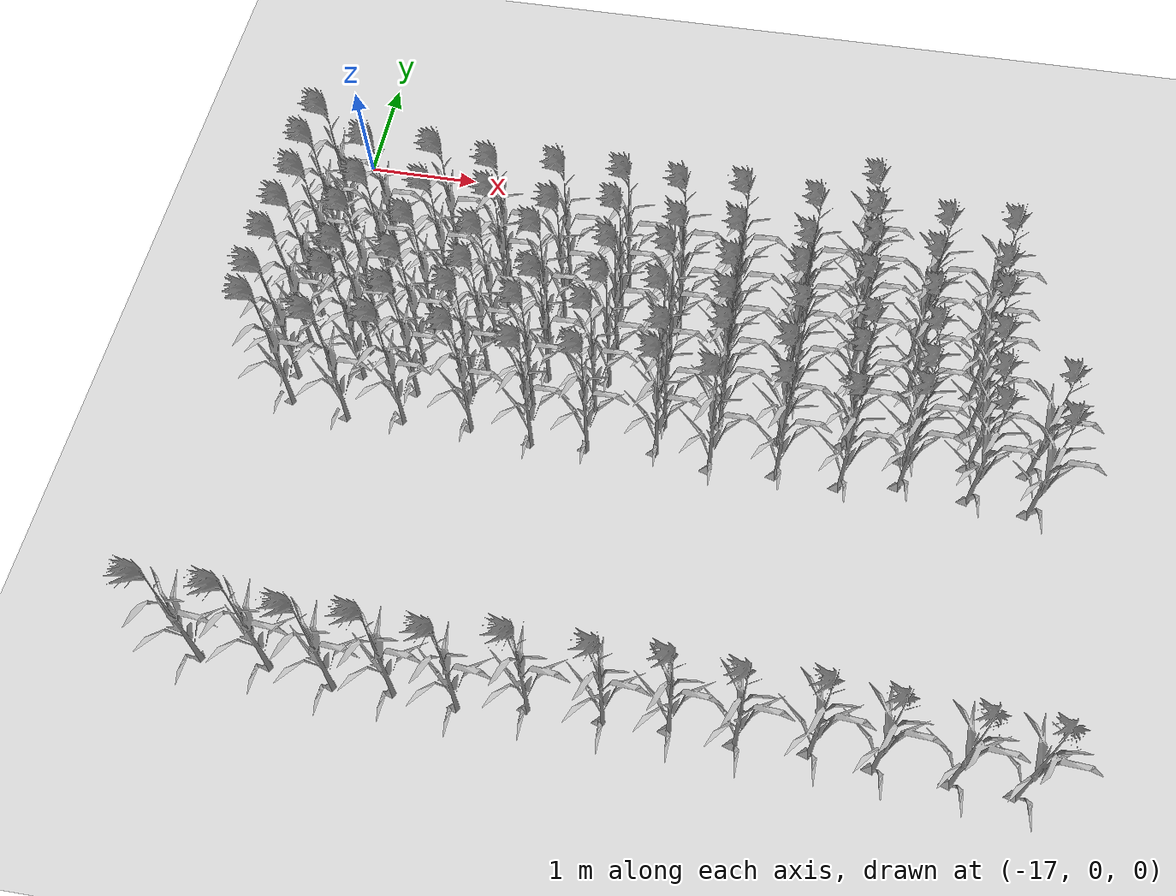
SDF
<sdf version="1.7">
 <world name="farmland_world">
  <model name="ground_plane">
   <static>1</static>
   <link name="link">
    <collision name="collision">
     <geometry><plane><normal>0 0 1</normal><size>40.0 40.0</size></plane></geometry>
     <surface><friction><ode><mu>100</mu><mu2>50</mu2></ode></friction></surface>
    </collision>
    <visual name="visual">
     <cast_shadows>0</cast_shadows>
     <geometry><plane><normal>0 0 1</normal><size>40.0 40.0</size></plane></geometry>
     <material>
      <script><uri>file://media/materials/scripts/gazebo.material</uri><name>Gazebo/Grey</name></script>
     </material>
    </visual>
   </link>
  </model>
  <model name="tree_3_2442">
   <static>1</static>
   <link name="link">
    <collision name="collision">
     <geometry><mesh><uri>model://Corn_low_poly/corn.obj</uri><scale>1 1 1</scale></mesh></geometry>
     <surface><friction><ode><mu>100</mu><mu2>50</mu2></ode></friction></surface>
    </collision>
    <visual name="visual">
     <geometry><mesh><uri>model://Corn_low_poly/corn.obj</uri><scale>1 1 1</scale></mesh></geometry>
    </visual>
   </link>
   <pose>-10.813982819709805 -5.044033839136802 0 0 0 0</pose>
  </model>
  <model name="tree_3_2443">
   <static>1</static>
   <link name="link">
    <collision name="collision">
     <geometry><mesh><uri>model://Corn_low_poly/corn.obj</uri><scale>1 1 1</scale></mesh></geometry>
     <surface><friction><ode><mu>100</mu><mu2>50</mu2></ode></friction></surface>
    </collision>
    <visual name="visual">
     <geometry><mesh><uri>model://Corn_low_poly/corn.obj</uri><scale>1 1 1</scale></mesh></geometry>
    </visual>
   </link>
   <pose>-11.293837085174149 -5.0311727630753875 0 0 0 0</pose>
  </model>
  <model name="tree_3_2444">
   <static>1</static>
   <link name="link">
    <collision name="collision">
     <geometry><mesh><uri>model://Corn_low_poly/corn.obj</uri><scale>1 1 1</scale></mesh></geometry>
     <surface><friction><ode><mu>100</mu><mu2>50</mu2></ode></friction></surface>
    </collision>
    <visual name="visual">
     <geometry><mesh><uri>model://Corn_low_poly/corn.obj</uri><scale>1 1 1</scale></mesh></geometry>
    </visual>
   </link>
   <pose>-11.859439102668842 -5.011030913694257 0 0 0 0</pose>
  </model>
  <model name="tree_3_2445">
   <static>1</static>
   <link name="link">
    <collision name="collision">
     <geometry><mesh><uri>model://Corn_low_poly/corn.obj</uri><scale>1 1 1</scale></mesh></geometry>
     <surface><friction><ode><mu>100</mu><mu2>50</mu2></ode></friction></surface>
    </collision>
    <visual name="visual">
     <geometry><mesh><uri>model://Corn_low_poly/corn.obj</uri><scale>1 1 1</scale></mesh></geometry>
    </visual>
   </link>
   <pose>-12.335916438047455 -4.973076390374428 0 0 0 0</pose>
  </model>
  <model name="tree_3_2446">
   <static>1</static>
   <link name="link">
    <collision name="collision">
     <geometry><mesh><uri>model://Corn_low_poly/corn.obj</uri><scale>1 1 1</scale></mesh></geometry>
     <surface><friction><ode><mu>100</mu><mu2>50</mu2></ode></friction></surface>
    </collision>
    <visual name="visual">
     <geometry><mesh><uri>model://Corn_low_poly/corn.obj</uri><scale>1 1 1</scale></mesh></geometry>
    </visual>
   </link>
   <pose>-12.890268447050023 -4.999595074379133 0 0 0 0</pose>
  </model>
  <model name="tree_3_2447">
   <static>1</static>
   <link name="link">
    <collision name="collision">
     <geometry><mesh><uri>model://Corn_low_poly/corn.obj</uri><scale>1 1 1</scale></mesh></geometry>
     <surface><friction><ode><mu>100</mu><mu2>50</mu2></ode></friction></surface>
    </collision>
    <visual name="visual">
     <geometry><mesh><uri>model://Corn_low_poly/corn.obj</uri><scale>1 1 1</scale></mesh></geometry>
    </visual>
   </link>
   <pose>-13.389869517921136 -4.971297975610936 0 0 0 0</pose>
  </model>
  <model name="tree_3_2448">
   <static>1</static>
   <link name="link">
    <collision name="collision">
     <geometry><mesh><uri>model://Corn_low_poly/corn.obj</uri><scale>1 1 1</scale></mesh></geometry>
     <surface><friction><ode><mu>100</mu><mu2>50</mu2></ode></friction></surface>
    </collision>
    <visual name="visual">
     <geometry><mesh><uri>model://Corn_low_poly/corn.obj</uri><scale>1 1 1</scale></mesh></geometry>
    </visual>
   </link>
   <pose>-13.887070113515204 -4.985414589038329 0 0 0 0</pose>
  </model>
  <model name="tree_3_2449">
   <static>1</static>
   <link name="link">
    <collision name="collision">
     <geometry><mesh><uri>model://Corn_low_poly/corn.obj</uri><scale>1 1 1</scale></mesh></geometry>
     <surface><friction><ode><mu>100</mu><mu2>50</mu2></ode></friction></surface>
    </collision>
    <visual name="visual">
     <geometry><mesh><uri>model://Corn_low_poly/corn.obj</uri><scale>1 1 1</scale></mesh></geometry>
    </visual>
   </link>
   <pose>-14.461688075386332 -4.978131353409035 0 0 0 0</pose>
  </model>
  <model name="tree_3_2450">
   <static>1</static>
   <link name="link">
    <collision name="collision">
     <geometry><mesh><uri>model://Corn_low_poly/corn.obj</uri><scale>1 1 1</scale></mesh></geometry>
     <surface><friction><ode><mu>100</mu><mu2>50</mu2></ode></friction></surface>
    </collision>
    <visual name="visual">
     <geometry><mesh><uri>model://Corn_low_poly/corn.obj</uri><scale>1 1 1</scale></mesh></geometry>
    </visual>
   </link>
   <pose>-14.987341040093252 -5.049699377374454 0 0 0 0</pose>
  </model>
  <model name="tree_3_2451">
   <static>1</static>
   <link name="link">
    <collision name="collision">
     <geometry><mesh><uri>model://Corn_low_poly/corn.obj</uri><scale>1 1 1</scale></mesh></geometry>
     <surface><friction><ode><mu>100</mu><mu2>50</mu2></ode></friction></surface>
    </collision>
    <visual name="visual">
     <geometry><mesh><uri>model://Corn_low_poly/corn.obj</uri><scale>1 1 1</scale></mesh></geometry>
    </visual>
   </link>
   <pose>-15.489242002387796 -5.016638479376735 0 0 0 0</pose>
  </model>
  <model name="tree_3_2452">
   <static>1</static>
   <link name="link">
    <collision name="collision">
     <geometry><mesh><uri>model://Corn_low_poly/corn.obj</uri><scale>1 1 1</scale></mesh></geometry>
     <surface><friction><ode><mu>100</mu><mu2>50</mu2></ode></friction></surface>
    </collision>
    <visual name="visual">
     <geometry><mesh><uri>model://Corn_low_poly/corn.obj</uri><scale>1 1 1</scale></mesh></geometry>
    </visual>
   </link>
   <pose>-15.951922841426425 -5.041342054554254 0 0 0 0</pose>
  </model>
  <model name="tree_3_2453">
   <static>1</static>
   <link name="link">
    <collision name="collision">
     <geometry><mesh><uri>model://Corn_low_poly/corn.obj</uri><scale>1 1 1</scale></mesh></geometry>
     <surface><friction><ode><mu>100</mu><mu2>50</mu2></ode></friction></surface>
    </collision>
    <visual name="visual">
     <geometry><mesh><uri>model://Corn_low_poly/corn.obj</uri><scale>1 1 1</scale></mesh></geometry>
    </visual>
   </link>
   <pose>-16.471373875009284 -4.9674645211224515 0 0 0 0</pose>
  </model>
  <model name="tree_3_2454">
   <static>1</static>
   <link name="link">
    <collision name="collision">
     <geometry><mesh><uri>model://Corn_low_poly/corn.obj</uri><scale>1 1 1</scale></mesh></geometry>
     <surface><friction><ode><mu>100</mu><mu2>50</mu2></ode></friction></surface>
    </collision>
    <visual name="visual">
     <geometry><mesh><uri>model://Corn_low_poly/corn.obj</uri><scale>1 1 1</scale></mesh></geometry>
    </visual>
   </link>
   <pose>-17.01276348608539 -4.979505058281333 0 0 0 0</pose>
  </model>
  <model name="tree_3_2535">
   <static>1</static>
   <link name="link">
    <collision name="collision">
     <geometry><mesh><uri>model://Corn_low_poly/corn.obj</uri><scale>1 1 1</scale></mesh></geometry>
     <surface><friction><ode><mu>100</mu><mu2>50</mu2></ode></friction></surface>
    </collision>
    <visual name="visual">
     <geometry><mesh><uri>model://Corn_low_poly/corn.obj</uri><scale>1 1 1</scale></mesh></geometry>
    </visual>
   </link>
   <pose>-11.292019375755457 -2.030452620999917 0 0 0 0</pose>
  </model>
  <model name="tree_3_2536">
   <static>1</static>
   <link name="link">
    <collision name="collision">
     <geometry><mesh><uri>model://Corn_low_poly/corn.obj</uri><scale>1 1 1</scale></mesh></geometry>
     <surface><friction><ode><mu>100</mu><mu2>50</mu2></ode></friction></surface>
    </collision>
    <visual name="visual">
     <geometry><mesh><uri>model://Corn_low_poly/corn.obj</uri><scale>1 1 1</scale></mesh></geometry>
    </visual>
   </link>
   <pose>-11.784299799415143 -2.0364456040533216 0 0 0 0</pose>
  </model>
  <model name="tree_3_2537">
   <static>1</static>
   <link name="link">
    <collision name="collision">
     <geometry><mesh><uri>model://Corn_low_poly/corn.obj</uri><scale>1 1 1</scale></mesh></geometry>
     <surface><friction><ode><mu>100</mu><mu2>50</mu2></ode></friction></surface>
    </collision>
    <visual name="visual">
     <geometry><mesh><uri>model://Corn_low_poly/corn.obj</uri><scale>1 1 1</scale></mesh></geometry>
    </visual>
   </link>
   <pose>-12.265547425607311 -2.0361134748566694 0 0 0 0</pose>
  </model>
  <model name="tree_3_2538">
   <static>1</static>
   <link name="link">
    <collision name="collision">
     <geometry><mesh><uri>model://Corn_low_poly/corn.obj</uri><scale>1 1 1</scale></mesh></geometry>
     <surface><friction><ode><mu>100</mu><mu2>50</mu2></ode></friction></surface>
    </collision>
    <visual name="visual">
     <geometry><mesh><uri>model://Corn_low_poly/corn.obj</uri><scale>1 1 1</scale></mesh></geometry>
    </visual>
   </link>
   <pose>-12.795250518786201 -1.9899232818067878 0 0 0 0</pose>
  </model>
  <model name="tree_3_2539">
   <static>1</static>
   <link name="link">
    <collision name="collision">
     <geometry><mesh><uri>model://Corn_low_poly/corn.obj</uri><scale>1 1 1</scale></mesh></geometry>
     <surface><friction><ode><mu>100</mu><mu2>50</mu2></ode></friction></surface>
    </collision>
    <visual name="visual">
     <geometry><mesh><uri>model://Corn_low_poly/corn.obj</uri><scale>1 1 1</scale></mesh></geometry>
    </visual>
   </link>
   <pose>-13.371459981876177 -2.003383153055025 0 0 0 0</pose>
  </model>
  <model name="tree_3_2540">
   <static>1</static>
   <link name="link">
    <collision name="collision">
     <geometry><mesh><uri>model://Corn_low_poly/corn.obj</uri><scale>1 1 1</scale></mesh></geometry>
     <surface><friction><ode><mu>100</mu><mu2>50</mu2></ode></friction></surface>
    </collision>
    <visual name="visual">
     <geometry><mesh><uri>model://Corn_low_poly/corn.obj</uri><scale>1 1 1</scale></mesh></geometry>
    </visual>
   </link>
   <pose>-13.900843047974073 -2.003384526437017 0 0 0 0</pose>
  </model>
  <model name="tree_3_2541">
   <static>1</static>
   <link name="link">
    <collision name="collision">
     <geometry><mesh><uri>model://Corn_low_poly/corn.obj</uri><scale>1 1 1</scale></mesh></geometry>
     <surface><friction><ode><mu>100</mu><mu2>50</mu2></ode></friction></surface>
    </collision>
    <visual name="visual">
     <geometry><mesh><uri>model://Corn_low_poly/corn.obj</uri><scale>1 1 1</scale></mesh></geometry>
    </visual>
   </link>
   <pose>-14.355396189523063 -2.012187142470603 0 0 0 0</pose>
  </model>
  <model name="tree_3_2542">
   <static>1</static>
   <link name="link">
    <collision name="collision">
     <geometry><mesh><uri>model://Corn_low_poly/corn.obj</uri><scale>1 1 1</scale></mesh></geometry>
     <surface><friction><ode><mu>100</mu><mu2>50</mu2></ode></friction></surface>
    </collision>
    <visual name="visual">
     <geometry><mesh><uri>model://Corn_low_poly/corn.obj</uri><scale>1 1 1</scale></mesh></geometry>
    </visual>
   </link>
   <pose>-14.875046956748644 -2.0485049222445255 0 0 0 0</pose>
  </model>
  <model name="tree_3_2543">
   <static>1</static>
   <link name="link">
    <collision name="collision">
     <geometry><mesh><uri>model://Corn_low_poly/corn.obj</uri><scale>1 1 1</scale></mesh></geometry>
     <surface><friction><ode><mu>100</mu><mu2>50</mu2></ode></friction></surface>
    </collision>
    <visual name="visual">
     <geometry><mesh><uri>model://Corn_low_poly/corn.obj</uri><scale>1 1 1</scale></mesh></geometry>
    </visual>
   </link>
   <pose>-15.415552251515653 -2.0459977177668907 0 0 0 0</pose>
  </model>
  <model name="tree_3_2544">
   <static>1</static>
   <link name="link">
    <collision name="collision">
     <geometry><mesh><uri>model://Corn_low_poly/corn.obj</uri><scale>1 1 1</scale></mesh></geometry>
     <surface><friction><ode><mu>100</mu><mu2>50</mu2></ode></friction></surface>
    </collision>
    <visual name="visual">
     <geometry><mesh><uri>model://Corn_low_poly/corn.obj</uri><scale>1 1 1</scale></mesh></geometry>
    </visual>
   </link>
   <pose>-15.980851975432646 -2.0420931281696366 0 0 0 0</pose>
  </model>
  <model name="tree_3_2545">
   <static>1</static>
   <link name="link">
    <collision name="collision">
     <geometry><mesh><uri>model://Corn_low_poly/corn.obj</uri><scale>1 1 1</scale></mesh></geometry>
     <surface><friction><ode><mu>100</mu><mu2>50</mu2></ode></friction></surface>
    </collision>
    <visual name="visual">
     <geometry><mesh><uri>model://Corn_low_poly/corn.obj</uri><scale>1 1 1</scale></mesh></geometry>
    </visual>
   </link>
   <pose>-16.457686398488104 -2.0257554688879975 0 0 0 0</pose>
  </model>
  <model name="tree_3_2546">
   <static>1</static>
   <link name="link">
    <collision name="collision">
     <geometry><mesh><uri>model://Corn_low_poly/corn.obj</uri><scale>1 1 1</scale></mesh></geometry>
     <surface><friction><ode><mu>100</mu><mu2>50</mu2></ode></friction></surface>
    </collision>
    <visual name="visual">
     <geometry><mesh><uri>model://Corn_low_poly/corn.obj</uri><scale>1 1 1</scale></mesh></geometry>
    </visual>
   </link>
   <pose>-17.00250191251443 -2.0122074009069912 0 0 0 0</pose>
  </model>
  <model name="tree_3_2558">
   <static>1</static>
   <link name="link">
    <collision name="collision">
     <geometry><mesh><uri>model://Corn_low_poly/corn.obj</uri><scale>1 1 1</scale></mesh></geometry>
     <surface><friction><ode><mu>100</mu><mu2>50</mu2></ode></friction></surface>
    </collision>
    <visual name="visual">
     <geometry><mesh><uri>model://Corn_low_poly/corn.obj</uri><scale>1 1 1</scale></mesh></geometry>
    </visual>
   </link>
   <pose>-10.78716455898352 -2.3461958768836344 0 0 0 0</pose>
  </model>
  <model name="tree_3_2559">
   <static>1</static>
   <link name="link">
    <collision name="collision">
     <geometry><mesh><uri>model://Corn_low_poly/corn.obj</uri><scale>1 1 1</scale></mesh></geometry>
     <surface><friction><ode><mu>100</mu><mu2>50</mu2></ode></friction></surface>
    </collision>
    <visual name="visual">
     <geometry><mesh><uri>model://Corn_low_poly/corn.obj</uri><scale>1 1 1</scale></mesh></geometry>
    </visual>
   </link>
   <pose>-11.280319029269068 -2.3618780422292525 0 0 0 0</pose>
  </model>
  <model name="tree_3_2560">
   <static>1</static>
   <link name="link">
    <collision name="collision">
     <geometry><mesh><uri>model://Corn_low_poly/corn.obj</uri><scale>1 1 1</scale></mesh></geometry>
     <surface><friction><ode><mu>100</mu><mu2>50</mu2></ode></friction></surface>
    </collision>
    <visual name="visual">
     <geometry><mesh><uri>model://Corn_low_poly/corn.obj</uri><scale>1 1 1</scale></mesh></geometry>
    </visual>
   </link>
   <pose>-11.805098567663254 -2.378081534781115 0 0 0 0</pose>
  </model>
  <model name="tree_3_2561">
   <static>1</static>
   <link name="link">
    <collision name="collision">
     <geometry><mesh><uri>model://Corn_low_poly/corn.obj</uri><scale>1 1 1</scale></mesh></geometry>
     <surface><friction><ode><mu>100</mu><mu2>50</mu2></ode></friction></surface>
    </collision>
    <visual name="visual">
     <geometry><mesh><uri>model://Corn_low_poly/corn.obj</uri><scale>1 1 1</scale></mesh></geometry>
    </visual>
   </link>
   <pose>-12.319135443949085 -2.3166137843055212 0 0 0 0</pose>
  </model>
  <model name="tree_3_2562">
   <static>1</static>
   <link name="link">
    <collision name="collision">
     <geometry><mesh><uri>model://Corn_low_poly/corn.obj</uri><scale>1 1 1</scale></mesh></geometry>
     <surface><friction><ode><mu>100</mu><mu2>50</mu2></ode></friction></surface>
    </collision>
    <visual name="visual">
     <geometry><mesh><uri>model://Corn_low_poly/corn.obj</uri><scale>1 1 1</scale></mesh></geometry>
    </visual>
   </link>
   <pose>-12.85539945359813 -2.357112541071008 0 0 0 0</pose>
  </model>
  <model name="tree_3_2563">
   <static>1</static>
   <link name="link">
    <collision name="collision">
     <geometry><mesh><uri>model://Corn_low_poly/corn.obj</uri><scale>1 1 1</scale></mesh></geometry>
     <surface><friction><ode><mu>100</mu><mu2>50</mu2></ode></friction></surface>
    </collision>
    <visual name="visual">
     <geometry><mesh><uri>model://Corn_low_poly/corn.obj</uri><scale>1 1 1</scale></mesh></geometry>
    </visual>
   </link>
   <pose>-13.358152919974133 -2.2848244215642466 0 0 0 0</pose>
  </model>
  <model name="tree_3_2564">
   <static>1</static>
   <link name="link">
    <collision name="collision">
     <geometry><mesh><uri>model://Corn_low_poly/corn.obj</uri><scale>1 1 1</scale></mesh></geometry>
     <surface><friction><ode><mu>100</mu><mu2>50</mu2></ode></friction></surface>
    </collision>
    <visual name="visual">
     <geometry><mesh><uri>model://Corn_low_poly/corn.obj</uri><scale>1 1 1</scale></mesh></geometry>
    </visual>
   </link>
   <pose>-13.820828941116517 -2.365745301567671 0 0 0 0</pose>
  </model>
  <model name="tree_3_2565">
   <static>1</static>
   <link name="link">
    <collision name="collision">
     <geometry><mesh><uri>model://Corn_low_poly/corn.obj</uri><scale>1 1 1</scale></mesh></geometry>
     <surface><friction><ode><mu>100</mu><mu2>50</mu2></ode></friction></surface>
    </collision>
    <visual name="visual">
     <geometry><mesh><uri>model://Corn_low_poly/corn.obj</uri><scale>1 1 1</scale></mesh></geometry>
    </visual>
   </link>
   <pose>-14.43002449320617 -2.2853432276438683 0 0 0 0</pose>
  </model>
  <model name="tree_3_2566">
   <static>1</static>
   <link name="link">
    <collision name="collision">
     <geometry><mesh><uri>model://Corn_low_poly/corn.obj</uri><scale>1 1 1</scale></mesh></geometry>
     <surface><friction><ode><mu>100</mu><mu2>50</mu2></ode></friction></surface>
    </collision>
    <visual name="visual">
     <geometry><mesh><uri>model://Corn_low_poly/corn.obj</uri><scale>1 1 1</scale></mesh></geometry>
    </visual>
   </link>
   <pose>-14.95971291517288 -2.3187770239827574 0 0 0 0</pose>
  </model>
  <model name="tree_3_2567">
   <static>1</static>
   <link name="link">
    <collision name="collision">
     <geometry><mesh><uri>model://Corn_low_poly/corn.obj</uri><scale>1 1 1</scale></mesh></geometry>
     <surface><friction><ode><mu>100</mu><mu2>50</mu2></ode></friction></surface>
    </collision>
    <visual name="visual">
     <geometry><mesh><uri>model://Corn_low_poly/corn.obj</uri><scale>1 1 1</scale></mesh></geometry>
    </visual>
   </link>
   <pose>-15.482707900749409 -2.2849502683060594 0 0 0 0</pose>
  </model>
  <model name="tree_3_2568">
   <static>1</static>
   <link name="link">
    <collision name="collision">
     <geometry><mesh><uri>model://Corn_low_poly/corn.obj</uri><scale>1 1 1</scale></mesh></geometry>
     <surface><friction><ode><mu>100</mu><mu2>50</mu2></ode></friction></surface>
    </collision>
    <visual name="visual">
     <geometry><mesh><uri>model://Corn_low_poly/corn.obj</uri><scale>1 1 1</scale></mesh></geometry>
    </visual>
   </link>
   <pose>-15.954301848072225 -2.377153333954913 0 0 0 0</pose>
  </model>
  <model name="tree_3_2569">
   <static>1</static>
   <link name="link">
    <collision name="collision">
     <geometry><mesh><uri>model://Corn_low_poly/corn.obj</uri><scale>1 1 1</scale></mesh></geometry>
     <surface><friction><ode><mu>100</mu><mu2>50</mu2></ode></friction></surface>
    </collision>
    <visual name="visual">
     <geometry><mesh><uri>model://Corn_low_poly/corn.obj</uri><scale>1 1 1</scale></mesh></geometry>
    </visual>
   </link>
   <pose>-16.45518701160095 -2.280544681251127 0 0 0 0</pose>
  </model>
  <model name="tree_3_2570">
   <static>1</static>
   <link name="link">
    <collision name="collision">
     <geometry><mesh><uri>model://Corn_low_poly/corn.obj</uri><scale>1 1 1</scale></mesh></geometry>
     <surface><friction><ode><mu>100</mu><mu2>50</mu2></ode></friction></surface>
    </collision>
    <visual name="visual">
     <geometry><mesh><uri>model://Corn_low_poly/corn.obj</uri><scale>1 1 1</scale></mesh></geometry>
    </visual>
   </link>
   <pose>-17.008505826331415 -2.3627971628887496 0 0 0 0</pose>
  </model>
  <model name="tree_3_2582">
   <static>1</static>
   <link name="link">
    <collision name="collision">
     <geometry><mesh><uri>model://Corn_low_poly/corn.obj</uri><scale>1 1 1</scale></mesh></geometry>
     <surface><friction><ode><mu>100</mu><mu2>50</mu2></ode></friction></surface>
    </collision>
    <visual name="visual">
     <geometry><mesh><uri>model://Corn_low_poly/corn.obj</uri><scale>1 1 1</scale></mesh></geometry>
    </visual>
   </link>
   <pose>-10.776107216799847 -2.7110792007876365 0 0 0 0</pose>
  </model>
  <model name="tree_3_2583">
   <static>1</static>
   <link name="link">
    <collision name="collision">
     <geometry><mesh><uri>model://Corn_low_poly/corn.obj</uri><scale>1 1 1</scale></mesh></geometry>
     <surface><friction><ode><mu>100</mu><mu2>50</mu2></ode></friction></surface>
    </collision>
    <visual name="visual">
     <geometry><mesh><uri>model://Corn_low_poly/corn.obj</uri><scale>1 1 1</scale></mesh></geometry>
    </visual>
   </link>
   <pose>-11.267009359879246 -2.661394257989371 0 0 0 0</pose>
  </model>
  <model name="tree_3_2584">
   <static>1</static>
   <link name="link">
    <collision name="collision">
     <geometry><mesh><uri>model://Corn_low_poly/corn.obj</uri><scale>1 1 1</scale></mesh></geometry>
     <surface><friction><ode><mu>100</mu><mu2>50</mu2></ode></friction></surface>
    </collision>
    <visual name="visual">
     <geometry><mesh><uri>model://Corn_low_poly/corn.obj</uri><scale>1 1 1</scale></mesh></geometry>
    </visual>
   </link>
   <pose>-11.831708142582622 -2.6222706965325826 0 0 0 0</pose>
  </model>
  <model name="tree_3_2585">
   <static>1</static>
   <link name="link">
    <collision name="collision">
     <geometry><mesh><uri>model://Corn_low_poly/corn.obj</uri><scale>1 1 1</scale></mesh></geometry>
     <surface><friction><ode><mu>100</mu><mu2>50</mu2></ode></friction></surface>
    </collision>
    <visual name="visual">
     <geometry><mesh><uri>model://Corn_low_poly/corn.obj</uri><scale>1 1 1</scale></mesh></geometry>
    </visual>
   </link>
   <pose>-12.316840698965082 -2.7069707880888423 0 0 0 0</pose>
  </model>
  <model name="tree_3_2586">
   <static>1</static>
   <link name="link">
    <collision name="collision">
     <geometry><mesh><uri>model://Corn_low_poly/corn.obj</uri><scale>1 1 1</scale></mesh></geometry>
     <surface><friction><ode><mu>100</mu><mu2>50</mu2></ode></friction></surface>
    </collision>
    <visual name="visual">
     <geometry><mesh><uri>model://Corn_low_poly/corn.obj</uri><scale>1 1 1</scale></mesh></geometry>
    </visual>
   </link>
   <pose>-12.841464146031532 -2.6836215688329403 0 0 0 0</pose>
  </model>
  <model name="tree_3_2587">
   <static>1</static>
   <link name="link">
    <collision name="collision">
     <geometry><mesh><uri>model://Corn_low_poly/corn.obj</uri><scale>1 1 1</scale></mesh></geometry>
     <surface><friction><ode><mu>100</mu><mu2>50</mu2></ode></friction></surface>
    </collision>
    <visual name="visual">
     <geometry><mesh><uri>model://Corn_low_poly/corn.obj</uri><scale>1 1 1</scale></mesh></geometry>
    </visual>
   </link>
   <pose>-13.394454815208775 -2.7172366933957197 0 0 0 0</pose>
  </model>
  <model name="tree_3_2588">
   <static>1</static>
   <link name="link">
    <collision name="collision">
     <geometry><mesh><uri>model://Corn_low_poly/corn.obj</uri><scale>1 1 1</scale></mesh></geometry>
     <surface><friction><ode><mu>100</mu><mu2>50</mu2></ode></friction></surface>
    </collision>
    <visual name="visual">
     <geometry><mesh><uri>model://Corn_low_poly/corn.obj</uri><scale>1 1 1</scale></mesh></geometry>
    </visual>
   </link>
   <pose>-13.850589186189383 -2.628420000616696 0 0 0 0</pose>
  </model>
  <model name="tree_3_2589">
   <static>1</static>
   <link name="link">
    <collision name="collision">
     <geometry><mesh><uri>model://Corn_low_poly/corn.obj</uri><scale>1 1 1</scale></mesh></geometry>
     <surface><friction><ode><mu>100</mu><mu2>50</mu2></ode></friction></surface>
    </collision>
    <visual name="visual">
     <geometry><mesh><uri>model://Corn_low_poly/corn.obj</uri><scale>1 1 1</scale></mesh></geometry>
    </visual>
   </link>
   <pose>-14.426508889841601 -2.687295043673001 0 0 0 0</pose>
  </model>
  <model name="tree_3_2590">
   <static>1</static>
   <link name="link">
    <collision name="collision">
     <geometry><mesh><uri>model://Corn_low_poly/corn.obj</uri><scale>1 1 1</scale></mesh></geometry>
     <surface><friction><ode><mu>100</mu><mu2>50</mu2></ode></friction></surface>
    </collision>
    <visual name="visual">
     <geometry><mesh><uri>model://Corn_low_poly/corn.obj</uri><scale>1 1 1</scale></mesh></geometry>
    </visual>
   </link>
   <pose>-14.895949362132935 -2.7118780761122707 0 0 0 0</pose>
  </model>
  <model name="tree_3_2591">
   <static>1</static>
   <link name="link">
    <collision name="collision">
     <geometry><mesh><uri>model://Corn_low_poly/corn.obj</uri><scale>1 1 1</scale></mesh></geometry>
     <surface><friction><ode><mu>100</mu><mu2>50</mu2></ode></friction></surface>
    </collision>
    <visual name="visual">
     <geometry><mesh><uri>model://Corn_low_poly/corn.obj</uri><scale>1 1 1</scale></mesh></geometry>
    </visual>
   </link>
   <pose>-15.426569132671663 -2.644257479418045 0 0 0 0</pose>
  </model>
  <model name="tree_3_2592">
   <static>1</static>
   <link name="link">
    <collision name="collision">
     <geometry><mesh><uri>model://Corn_low_poly/corn.obj</uri><scale>1 1 1</scale></mesh></geometry>
     <surface><friction><ode><mu>100</mu><mu2>50</mu2></ode></friction></surface>
    </collision>
    <visual name="visual">
     <geometry><mesh><uri>model://Corn_low_poly/corn.obj</uri><scale>1 1 1</scale></mesh></geometry>
    </visual>
   </link>
   <pose>-16.005556559655567 -2.664846046210624 0 0 0 0</pose>
  </model>
  <model name="tree_3_2593">
   <static>1</static>
   <link name="link">
    <collision name="collision">
     <geometry><mesh><uri>model://Corn_low_poly/corn.obj</uri><scale>1 1 1</scale></mesh></geometry>
     <surface><friction><ode><mu>100</mu><mu2>50</mu2></ode></friction></surface>
    </collision>
    <visual name="visual">
     <geometry><mesh><uri>model://Corn_low_poly/corn.obj</uri><scale>1 1 1</scale></mesh></geometry>
    </visual>
   </link>
   <pose>-16.480689279461096 -2.7107225919401956 0 0 0 0</pose>
  </model>
  <model name="tree_3_2594">
   <static>1</static>
   <link name="link">
    <collision name="collision">
     <geometry><mesh><uri>model://Corn_low_poly/corn.obj</uri><scale>1 1 1</scale></mesh></geometry>
     <surface><friction><ode><mu>100</mu><mu2>50</mu2></ode></friction></surface>
    </collision>
    <visual name="visual">
     <geometry><mesh><uri>model://Corn_low_poly/corn.obj</uri><scale>1 1 1</scale></mesh></geometry>
    </visual>
   </link>
   <pose>-16.98516796411701 -2.623624026066223 0 0 0 0</pose>
  </model>
  <model name="tree_3_2607">
   <static>1</static>
   <link name="link">
    <collision name="collision">
     <geometry><mesh><uri>model://Corn_low_poly/corn.obj</uri><scale>1 1 1</scale></mesh></geometry>
     <surface><friction><ode><mu>100</mu><mu2>50</mu2></ode></friction></surface>
    </collision>
    <visual name="visual">
     <geometry><mesh><uri>model://Corn_low_poly/corn.obj</uri><scale>1 1 1</scale></mesh></geometry>
    </visual>
   </link>
   <pose>-11.23776692387849 -0.9780256788441644 0 0 0 0</pose>
  </model>
  <model name="tree_3_2608">
   <static>1</static>
   <link name="link">
    <collision name="collision">
     <geometry><mesh><uri>model://Corn_low_poly/corn.obj</uri><scale>1 1 1</scale></mesh></geometry>
     <surface><friction><ode><mu>100</mu><mu2>50</mu2></ode></friction></surface>
    </collision>
    <visual name="visual">
     <geometry><mesh><uri>model://Corn_low_poly/corn.obj</uri><scale>1 1 1</scale></mesh></geometry>
    </visual>
   </link>
   <pose>-11.75498942607896 -1.0242363893308606 0 0 0 0</pose>
  </model>
  <model name="tree_3_2609">
   <static>1</static>
   <link name="link">
    <collision name="collision">
     <geometry><mesh><uri>model://Corn_low_poly/corn.obj</uri><scale>1 1 1</scale></mesh></geometry>
     <surface><friction><ode><mu>100</mu><mu2>50</mu2></ode></friction></surface>
    </collision>
    <visual name="visual">
     <geometry><mesh><uri>model://Corn_low_poly/corn.obj</uri><scale>1 1 1</scale></mesh></geometry>
    </visual>
   </link>
   <pose>-12.312231249626334 -1.0029285437946653 0 0 0 0</pose>
  </model>
  <model name="tree_3_2610">
   <static>1</static>
   <link name="link">
    <collision name="collision">
     <geometry><mesh><uri>model://Corn_low_poly/corn.obj</uri><scale>1 1 1</scale></mesh></geometry>
     <surface><friction><ode><mu>100</mu><mu2>50</mu2></ode></friction></surface>
    </collision>
    <visual name="visual">
     <geometry><mesh><uri>model://Corn_low_poly/corn.obj</uri><scale>1 1 1</scale></mesh></geometry>
    </visual>
   </link>
   <pose>-12.792569947834858 -0.9950330344861229 0 0 0 0</pose>
  </model>
  <model name="tree_3_2611">
   <static>1</static>
   <link name="link">
    <collision name="collision">
     <geometry><mesh><uri>model://Corn_low_poly/corn.obj</uri><scale>1 1 1</scale></mesh></geometry>
     <surface><friction><ode><mu>100</mu><mu2>50</mu2></ode></friction></surface>
    </collision>
    <visual name="visual">
     <geometry><mesh><uri>model://Corn_low_poly/corn.obj</uri><scale>1 1 1</scale></mesh></geometry>
    </visual>
   </link>
   <pose>-13.376120727615106 -0.9570732401634444 0 0 0 0</pose>
  </model>
  <model name="tree_3_2612">
   <static>1</static>
   <link name="link">
    <collision name="collision">
     <geometry><mesh><uri>model://Corn_low_poly/corn.obj</uri><scale>1 1 1</scale></mesh></geometry>
     <surface><friction><ode><mu>100</mu><mu2>50</mu2></ode></friction></surface>
    </collision>
    <visual name="visual">
     <geometry><mesh><uri>model://Corn_low_poly/corn.obj</uri><scale>1 1 1</scale></mesh></geometry>
    </visual>
   </link>
   <pose>-13.885044017222242 -0.9935930601062012 0 0 0 0</pose>
  </model>
  <model name="tree_3_2613">
   <static>1</static>
   <link name="link">
    <collision name="collision">
     <geometry><mesh><uri>model://Corn_low_poly/corn.obj</uri><scale>1 1 1</scale></mesh></geometry>
     <surface><friction><ode><mu>100</mu><mu2>50</mu2></ode></friction></surface>
    </collision>
    <visual name="visual">
     <geometry><mesh><uri>model://Corn_low_poly/corn.obj</uri><scale>1 1 1</scale></mesh></geometry>
    </visual>
   </link>
   <pose>-14.354674738470138 -0.9708331722228325 0 0 0 0</pose>
  </model>
  <model name="tree_3_2614">
   <static>1</static>
   <link name="link">
    <collision name="collision">
     <geometry><mesh><uri>model://Corn_low_poly/corn.obj</uri><scale>1 1 1</scale></mesh></geometry>
     <surface><friction><ode><mu>100</mu><mu2>50</mu2></ode></friction></surface>
    </collision>
    <visual name="visual">
     <geometry><mesh><uri>model://Corn_low_poly/corn.obj</uri><scale>1 1 1</scale></mesh></geometry>
    </visual>
   </link>
   <pose>-14.888443857934949 -0.9844623121867907 0 0 0 0</pose>
  </model>
  <model name="tree_3_2615">
   <static>1</static>
   <link name="link">
    <collision name="collision">
     <geometry><mesh><uri>model://Corn_low_poly/corn.obj</uri><scale>1 1 1</scale></mesh></geometry>
     <surface><friction><ode><mu>100</mu><mu2>50</mu2></ode></friction></surface>
    </collision>
    <visual name="visual">
     <geometry><mesh><uri>model://Corn_low_poly/corn.obj</uri><scale>1 1 1</scale></mesh></geometry>
    </visual>
   </link>
   <pose>-15.436028849541817 -1.027824687969656 0 0 0 0</pose>
  </model>
  <model name="tree_3_2616">
   <static>1</static>
   <link name="link">
    <collision name="collision">
     <geometry><mesh><uri>model://Corn_low_poly/corn.obj</uri><scale>1 1 1</scale></mesh></geometry>
     <surface><friction><ode><mu>100</mu><mu2>50</mu2></ode></friction></surface>
    </collision>
    <visual name="visual">
     <geometry><mesh><uri>model://Corn_low_poly/corn.obj</uri><scale>1 1 1</scale></mesh></geometry>
    </visual>
   </link>
   <pose>-15.915996504901893 -0.9579485009468379 0 0 0 0</pose>
  </model>
  <model name="tree_3_2617">
   <static>1</static>
   <link name="link">
    <collision name="collision">
     <geometry><mesh><uri>model://Corn_low_poly/corn.obj</uri><scale>1 1 1</scale></mesh></geometry>
     <surface><friction><ode><mu>100</mu><mu2>50</mu2></ode></friction></surface>
    </collision>
    <visual name="visual">
     <geometry><mesh><uri>model://Corn_low_poly/corn.obj</uri><scale>1 1 1</scale></mesh></geometry>
    </visual>
   </link>
   <pose>-16.483847171161276 -0.9724129299476915 0 0 0 0</pose>
  </model>
  <model name="tree_3_2618">
   <static>1</static>
   <link name="link">
    <collision name="collision">
     <geometry><mesh><uri>model://Corn_low_poly/corn.obj</uri><scale>1 1 1</scale></mesh></geometry>
     <surface><friction><ode><mu>100</mu><mu2>50</mu2></ode></friction></surface>
    </collision>
    <visual name="visual">
     <geometry><mesh><uri>model://Corn_low_poly/corn.obj</uri><scale>1 1 1</scale></mesh></geometry>
    </visual>
   </link>
   <pose>-16.98783617336796 -1.0226031036592838 0 0 0 0</pose>
  </model>
  <model name="tree_3_2631">
   <static>1</static>
   <link name="link">
    <collision name="collision">
     <geometry><mesh><uri>model://Corn_low_poly/corn.obj</uri><scale>1 1 1</scale></mesh></geometry>
     <surface><friction><ode><mu>100</mu><mu2>50</mu2></ode></friction></surface>
    </collision>
    <visual name="visual">
     <geometry><mesh><uri>model://Corn_low_poly/corn.obj</uri><scale>1 1 1</scale></mesh></geometry>
    </visual>
   </link>
   <pose>-11.286447589119032 -1.365723982812441 0 0 0 0</pose>
  </model>
  <model name="tree_3_2632">
   <static>1</static>
   <link name="link">
    <collision name="collision">
     <geometry><mesh><uri>model://Corn_low_poly/corn.obj</uri><scale>1 1 1</scale></mesh></geometry>
     <surface><friction><ode><mu>100</mu><mu2>50</mu2></ode></friction></surface>
    </collision>
    <visual name="visual">
     <geometry><mesh><uri>model://Corn_low_poly/corn.obj</uri><scale>1 1 1</scale></mesh></geometry>
    </visual>
   </link>
   <pose>-11.81746441124259 -1.347014837454906 0 0 0 0</pose>
  </model>
  <model name="tree_3_2633">
   <static>1</static>
   <link name="link">
    <collision name="collision">
     <geometry><mesh><uri>model://Corn_low_poly/corn.obj</uri><scale>1 1 1</scale></mesh></geometry>
     <surface><friction><ode><mu>100</mu><mu2>50</mu2></ode></friction></surface>
    </collision>
    <visual name="visual">
     <geometry><mesh><uri>model://Corn_low_poly/corn.obj</uri><scale>1 1 1</scale></mesh></geometry>
    </visual>
   </link>
   <pose>-12.305652863522052 -1.2849974407851839 0 0 0 0</pose>
  </model>
  <model name="tree_3_2634">
   <static>1</static>
   <link name="link">
    <collision name="collision">
     <geometry><mesh><uri>model://Corn_low_poly/corn.obj</uri><scale>1 1 1</scale></mesh></geometry>
     <surface><friction><ode><mu>100</mu><mu2>50</mu2></ode></friction></surface>
    </collision>
    <visual name="visual">
     <geometry><mesh><uri>model://Corn_low_poly/corn.obj</uri><scale>1 1 1</scale></mesh></geometry>
    </visual>
   </link>
   <pose>-12.81141799731789 -1.3744567293842307 0 0 0 0</pose>
  </model>
  <model name="tree_3_2635">
   <static>1</static>
   <link name="link">
    <collision name="collision">
     <geometry><mesh><uri>model://Corn_low_poly/corn.obj</uri><scale>1 1 1</scale></mesh></geometry>
     <surface><friction><ode><mu>100</mu><mu2>50</mu2></ode></friction></surface>
    </collision>
    <visual name="visual">
     <geometry><mesh><uri>model://Corn_low_poly/corn.obj</uri><scale>1 1 1</scale></mesh></geometry>
    </visual>
   </link>
   <pose>-13.373650924693386 -1.342570794916736 0 0 0 0</pose>
  </model>
  <model name="tree_3_2636">
   <static>1</static>
   <link name="link">
    <collision name="collision">
     <geometry><mesh><uri>model://Corn_low_poly/corn.obj</uri><scale>1 1 1</scale></mesh></geometry>
     <surface><friction><ode><mu>100</mu><mu2>50</mu2></ode></friction></surface>
    </collision>
    <visual name="visual">
     <geometry><mesh><uri>model://Corn_low_poly/corn.obj</uri><scale>1 1 1</scale></mesh></geometry>
    </visual>
   </link>
   <pose>-13.840454012912483 -1.377065231595707 0 0 0 0</pose>
  </model>
  <model name="tree_3_2637">
   <static>1</static>
   <link name="link">
    <collision name="collision">
     <geometry><mesh><uri>model://Corn_low_poly/corn.obj</uri><scale>1 1 1</scale></mesh></geometry>
     <surface><friction><ode><mu>100</mu><mu2>50</mu2></ode></friction></surface>
    </collision>
    <visual name="visual">
     <geometry><mesh><uri>model://Corn_low_poly/corn.obj</uri><scale>1 1 1</scale></mesh></geometry>
    </visual>
   </link>
   <pose>-14.373452636888102 -1.2854170482424845 0 0 0 0</pose>
  </model>
  <model name="tree_3_2638">
   <static>1</static>
   <link name="link">
    <collision name="collision">
     <geometry><mesh><uri>model://Corn_low_poly/corn.obj</uri><scale>1 1 1</scale></mesh></geometry>
     <surface><friction><ode><mu>100</mu><mu2>50</mu2></ode></friction></surface>
    </collision>
    <visual name="visual">
     <geometry><mesh><uri>model://Corn_low_poly/corn.obj</uri><scale>1 1 1</scale></mesh></geometry>
    </visual>
   </link>
   <pose>-14.867005943162455 -1.3688151723057012 0 0 0 0</pose>
  </model>
  <model name="tree_3_2639">
   <static>1</static>
   <link name="link">
    <collision name="collision">
     <geometry><mesh><uri>model://Corn_low_poly/corn.obj</uri><scale>1 1 1</scale></mesh></geometry>
     <surface><friction><ode><mu>100</mu><mu2>50</mu2></ode></friction></surface>
    </collision>
    <visual name="visual">
     <geometry><mesh><uri>model://Corn_low_poly/corn.obj</uri><scale>1 1 1</scale></mesh></geometry>
    </visual>
   </link>
   <pose>-15.387279794289185 -1.3289027407737142 0 0 0 0</pose>
  </model>
  <model name="tree_3_2640">
   <static>1</static>
   <link name="link">
    <collision name="collision">
     <geometry><mesh><uri>model://Corn_low_poly/corn.obj</uri><scale>1 1 1</scale></mesh></geometry>
     <surface><friction><ode><mu>100</mu><mu2>50</mu2></ode></friction></surface>
    </collision>
    <visual name="visual">
     <geometry><mesh><uri>model://Corn_low_poly/corn.obj</uri><scale>1 1 1</scale></mesh></geometry>
    </visual>
   </link>
   <pose>-15.910906844687362 -1.348608827034724 0 0 0 0</pose>
  </model>
  <model name="tree_3_2641">
   <static>1</static>
   <link name="link">
    <collision name="collision">
     <geometry><mesh><uri>model://Corn_low_poly/corn.obj</uri><scale>1 1 1</scale></mesh></geometry>
     <surface><friction><ode><mu>100</mu><mu2>50</mu2></ode></friction></surface>
    </collision>
    <visual name="visual">
     <geometry><mesh><uri>model://Corn_low_poly/corn.obj</uri><scale>1 1 1</scale></mesh></geometry>
    </visual>
   </link>
   <pose>-16.434762306672656 -1.3613408957845123 0 0 0 0</pose>
  </model>
  <model name="tree_3_2642">
   <static>1</static>
   <link name="link">
    <collision name="collision">
     <geometry><mesh><uri>model://Corn_low_poly/corn.obj</uri><scale>1 1 1</scale></mesh></geometry>
     <surface><friction><ode><mu>100</mu><mu2>50</mu2></ode></friction></surface>
    </collision>
    <visual name="visual">
     <geometry><mesh><uri>model://Corn_low_poly/corn.obj</uri><scale>1 1 1</scale></mesh></geometry>
    </visual>
   </link>
   <pose>-16.954209746920586 -1.3704582533284508 0 0 0 0</pose>
  </model>
  <model name="tree_3_2655">
   <static>1</static>
   <link name="link">
    <collision name="collision">
     <geometry><mesh><uri>model://Corn_low_poly/corn.obj</uri><scale>1 1 1</scale></mesh></geometry>
     <surface><friction><ode><mu>100</mu><mu2>50</mu2></ode></friction></surface>
    </collision>
    <visual name="visual">
     <geometry><mesh><uri>model://Corn_low_poly/corn.obj</uri><scale>1 1 1</scale></mesh></geometry>
    </visual>
   </link>
   <pose>-11.286017437870875 -1.6506092333150812 0 0 0 0</pose>
  </model>
  <model name="tree_3_2656">
   <static>1</static>
   <link name="link">
    <collision name="collision">
     <geometry><mesh><uri>model://Corn_low_poly/corn.obj</uri><scale>1 1 1</scale></mesh></geometry>
     <surface><friction><ode><mu>100</mu><mu2>50</mu2></ode></friction></surface>
    </collision>
    <visual name="visual">
     <geometry><mesh><uri>model://Corn_low_poly/corn.obj</uri><scale>1 1 1</scale></mesh></geometry>
    </visual>
   </link>
   <pose>-11.818785343959537 -1.7192213334843383 0 0 0 0</pose>
  </model>
  <model name="tree_3_2657">
   <static>1</static>
   <link name="link">
    <collision name="collision">
     <geometry><mesh><uri>model://Corn_low_poly/corn.obj</uri><scale>1 1 1</scale></mesh></geometry>
     <surface><friction><ode><mu>100</mu><mu2>50</mu2></ode></friction></surface>
    </collision>
    <visual name="visual">
     <geometry><mesh><uri>model://Corn_low_poly/corn.obj</uri><scale>1 1 1</scale></mesh></geometry>
    </visual>
   </link>
   <pose>-12.31932552050252 -1.6341213005691126 0 0 0 0</pose>
  </model>
  <model name="tree_3_2658">
   <static>1</static>
   <link name="link">
    <collision name="collision">
     <geometry><mesh><uri>model://Corn_low_poly/corn.obj</uri><scale>1 1 1</scale></mesh></geometry>
     <surface><friction><ode><mu>100</mu><mu2>50</mu2></ode></friction></surface>
    </collision>
    <visual name="visual">
     <geometry><mesh><uri>model://Corn_low_poly/corn.obj</uri><scale>1 1 1</scale></mesh></geometry>
    </visual>
   </link>
   <pose>-12.83505470868487 -1.651125768705515 0 0 0 0</pose>
  </model>
  <model name="tree_3_2659">
   <static>1</static>
   <link name="link">
    <collision name="collision">
     <geometry><mesh><uri>model://Corn_low_poly/corn.obj</uri><scale>1 1 1</scale></mesh></geometry>
     <surface><friction><ode><mu>100</mu><mu2>50</mu2></ode></friction></surface>
    </collision>
    <visual name="visual">
     <geometry><mesh><uri>model://Corn_low_poly/corn.obj</uri><scale>1 1 1</scale></mesh></geometry>
    </visual>
   </link>
   <pose>-13.378226647719087 -1.685861426696931 0 0 0 0</pose>
  </model>
  <model name="tree_3_2660">
   <static>1</static>
   <link name="link">
    <collision name="collision">
     <geometry><mesh><uri>model://Corn_low_poly/corn.obj</uri><scale>1 1 1</scale></mesh></geometry>
     <surface><friction><ode><mu>100</mu><mu2>50</mu2></ode></friction></surface>
    </collision>
    <visual name="visual">
     <geometry><mesh><uri>model://Corn_low_poly/corn.obj</uri><scale>1 1 1</scale></mesh></geometry>
    </visual>
   </link>
   <pose>-13.886008925985315 -1.6307759349069393 0 0 0 0</pose>
  </model>
  <model name="tree_3_2661">
   <static>1</static>
   <link name="link">
    <collision name="collision">
     <geometry><mesh><uri>model://Corn_low_poly/corn.obj</uri><scale>1 1 1</scale></mesh></geometry>
     <surface><friction><ode><mu>100</mu><mu2>50</mu2></ode></friction></surface>
    </collision>
    <visual name="visual">
     <geometry><mesh><uri>model://Corn_low_poly/corn.obj</uri><scale>1 1 1</scale></mesh></geometry>
    </visual>
   </link>
   <pose>-14.346176693452001 -1.6704706446828175 0 0 0 0</pose>
  </model>
  <model name="tree_3_2662">
   <static>1</static>
   <link name="link">
    <collision name="collision">
     <geometry><mesh><uri>model://Corn_low_poly/corn.obj</uri><scale>1 1 1</scale></mesh></geometry>
     <surface><friction><ode><mu>100</mu><mu2>50</mu2></ode></friction></surface>
    </collision>
    <visual name="visual">
     <geometry><mesh><uri>model://Corn_low_poly/corn.obj</uri><scale>1 1 1</scale></mesh></geometry>
    </visual>
   </link>
   <pose>-14.958348315410817 -1.6229138503384355 0 0 0 0</pose>
  </model>
  <model name="tree_3_2663">
   <static>1</static>
   <link name="link">
    <collision name="collision">
     <geometry><mesh><uri>model://Corn_low_poly/corn.obj</uri><scale>1 1 1</scale></mesh></geometry>
     <surface><friction><ode><mu>100</mu><mu2>50</mu2></ode></friction></surface>
    </collision>
    <visual name="visual">
     <geometry><mesh><uri>model://Corn_low_poly/corn.obj</uri><scale>1 1 1</scale></mesh></geometry>
    </visual>
   </link>
   <pose>-15.413163753060338 -1.719722734060723 0 0 0 0</pose>
  </model>
  <model name="tree_3_2664">
   <static>1</static>
   <link name="link">
    <collision name="collision">
     <geometry><mesh><uri>model://Corn_low_poly/corn.obj</uri><scale>1 1 1</scale></mesh></geometry>
     <surface><friction><ode><mu>100</mu><mu2>50</mu2></ode></friction></surface>
    </collision>
    <visual name="visual">
     <geometry><mesh><uri>model://Corn_low_poly/corn.obj</uri><scale>1 1 1</scale></mesh></geometry>
    </visual>
   </link>
   <pose>-15.964806210663713 -1.7033009949910822 0 0 0 0</pose>
  </model>
  <model name="tree_3_2665">
   <static>1</static>
   <link name="link">
    <collision name="collision">
     <geometry><mesh><uri>model://Corn_low_poly/corn.obj</uri><scale>1 1 1</scale></mesh></geometry>
     <surface><friction><ode><mu>100</mu><mu2>50</mu2></ode></friction></surface>
    </collision>
    <visual name="visual">
     <geometry><mesh><uri>model://Corn_low_poly/corn.obj</uri><scale>1 1 1</scale></mesh></geometry>
    </visual>
   </link>
   <pose>-16.506241835996935 -1.6653267956402504 0 0 0 0</pose>
  </model>
  <model name="tree_3_2666">
   <static>1</static>
   <link name="link">
    <collision name="collision">
     <geometry><mesh><uri>model://Corn_low_poly/corn.obj</uri><scale>1 1 1</scale></mesh></geometry>
     <surface><friction><ode><mu>100</mu><mu2>50</mu2></ode></friction></surface>
    </collision>
    <visual name="visual">
     <geometry><mesh><uri>model://Corn_low_poly/corn.obj</uri><scale>1 1 1</scale></mesh></geometry>
    </visual>
   </link>
   <pose>-16.9895495707762 -1.6941596302466562 0 0 0 0</pose>
  </model>
  <model name="tree_3_2729">
   <static>1</static>
   <link name="link">
    <collision name="collision">
     <geometry><mesh><uri>model://Corn_low_poly/corn.obj</uri><scale>1 1 1</scale></mesh></geometry>
     <surface><friction><ode><mu>100</mu><mu2>50</mu2></ode></friction></surface>
    </collision>
    <visual name="visual">
     <geometry><mesh><uri>model://Corn_low_poly/corn.obj</uri><scale>1 1 1</scale></mesh></geometry>
    </visual>
   </link>
   <pose>-12.341950945896805 -0.6924716640121001 0 0 0 0</pose>
  </model>
  <model name="tree_3_2738">
   <static>1</static>
   <link name="link">
    <collision name="collision">
     <geometry><mesh><uri>model://Corn_low_poly/corn.obj</uri><scale>1 1 1</scale></mesh></geometry>
     <surface><friction><ode><mu>100</mu><mu2>50</mu2></ode></friction></surface>
    </collision>
    <visual name="visual">
     <geometry><mesh><uri>model://Corn_low_poly/corn.obj</uri><scale>1 1 1</scale></mesh></geometry>
    </visual>
   </link>
   <pose>-16.950687708574183 -0.7006674400382926 0 0 0 0</pose>
  </model>
 </world>
</sdf>
